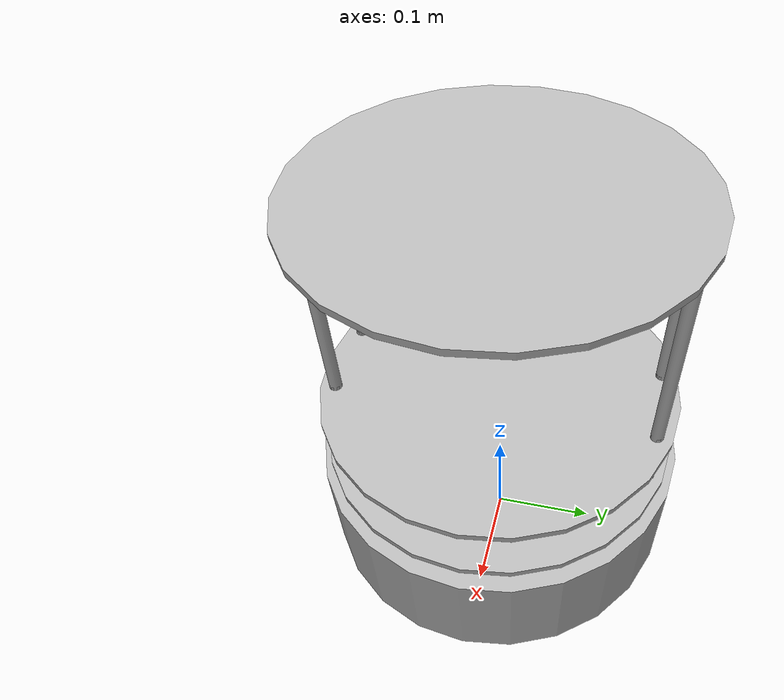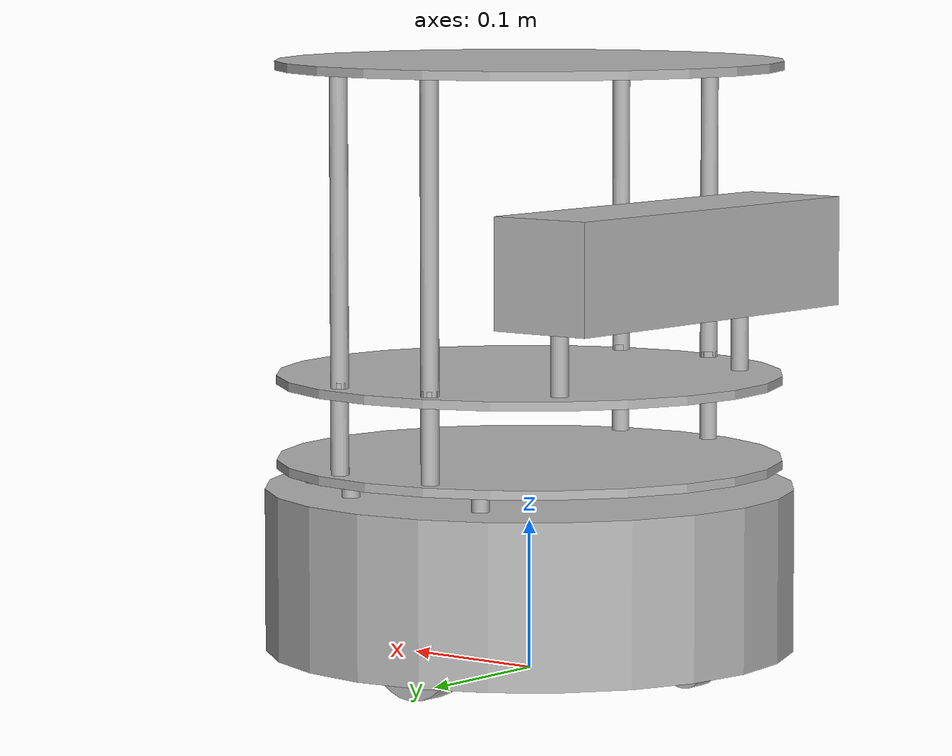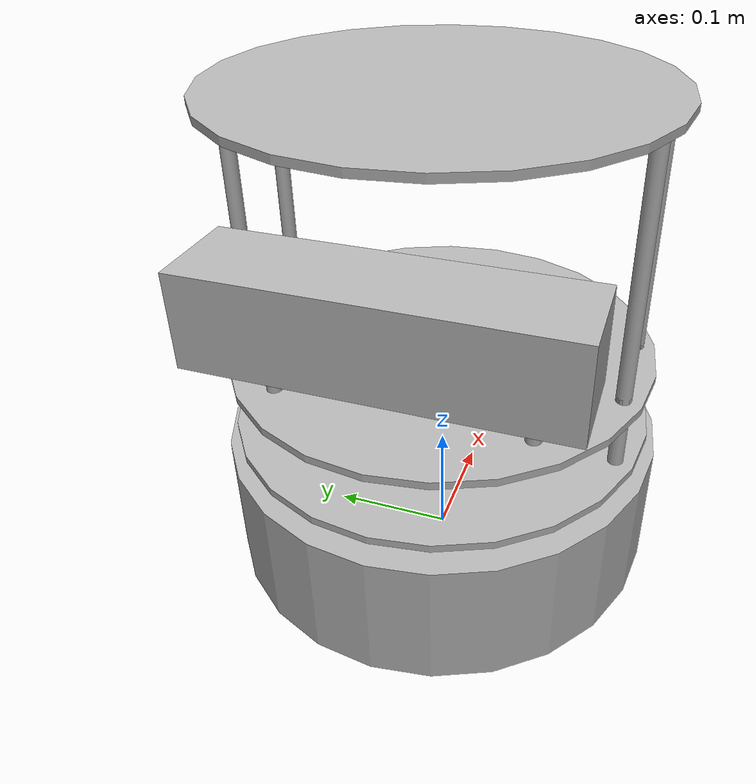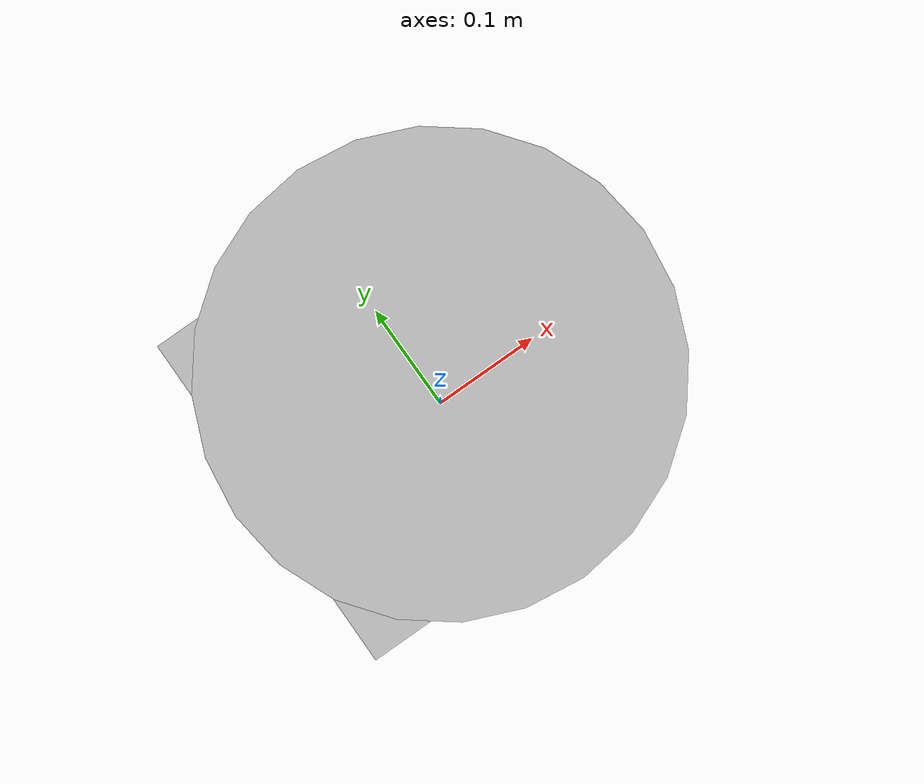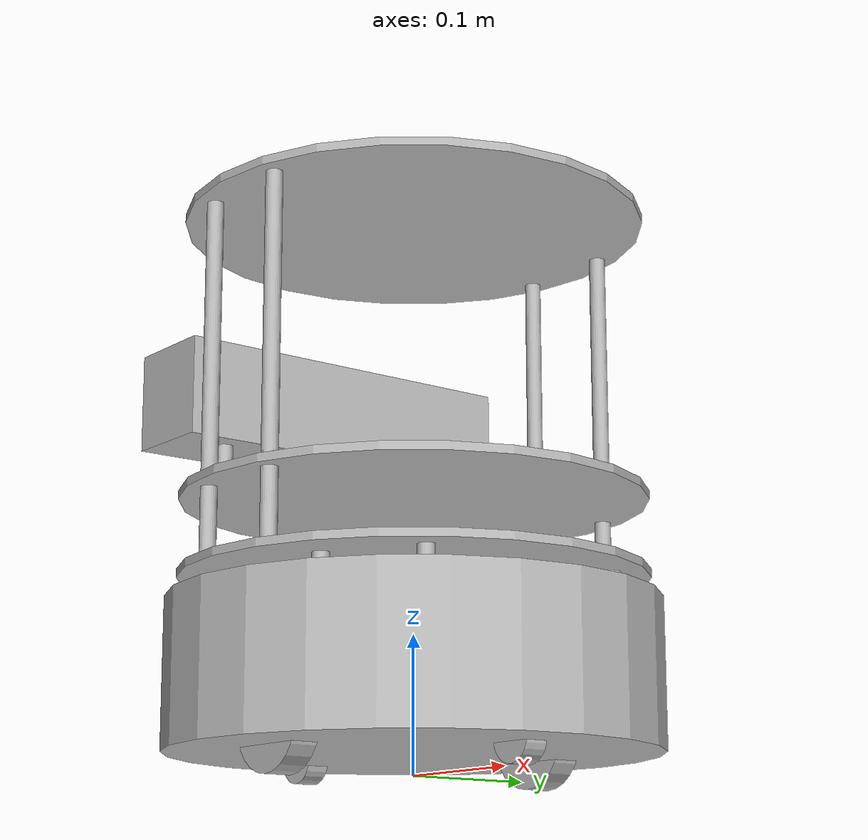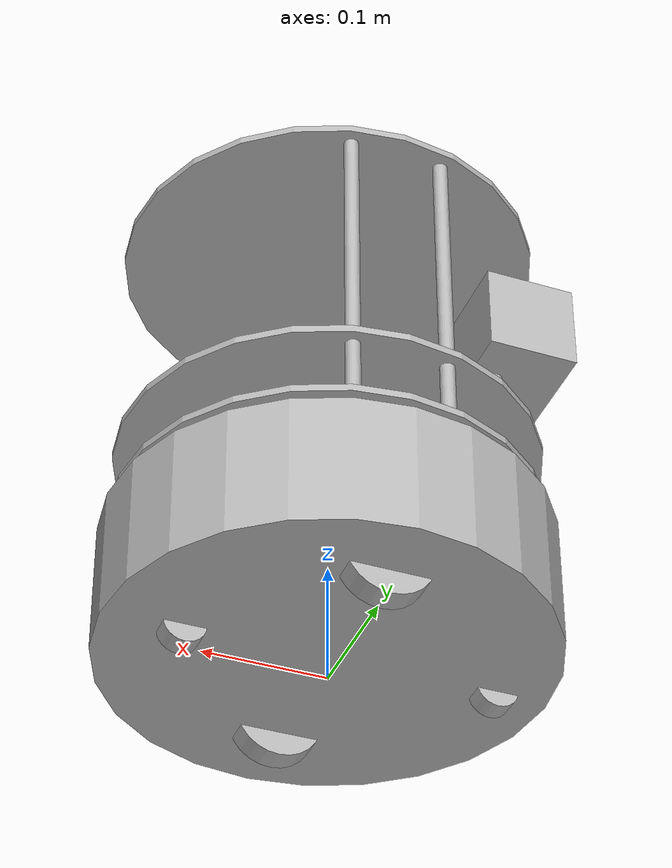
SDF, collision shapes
<sdf version='1.6'>
  <model name='turtlebot'>
    <link name='base_footprint'>
      <pose frame=''>0 0 0 0 -0 0</pose>
      <inertial>
        <pose frame=''>-0.009496 1.3e-05 0.135573 0 -0 0</pose>
        <mass>4.9213</mass>
        <inertia>
          <ixx>0.142129</ixx>
          <ixy>-4.09257e-06</ixy>
          <ixz>0.0154899</ixz>
          <iyy>0.140784</iyy>
          <iyz>6.52071e-06</iyz>
          <izz>0.0801071</izz>
        </inertia>
      </inertial>
      <collision name='base_footprint_fixed_joint_lump__base_collision'>
        <pose frame=''>0 0 0.06969 0 -0 0</pose>
        <geometry>
          <cylinder>
            <length>0.10938</length>
            <radius>0.178</radius>
          </cylinder>
        </geometry>
      </collision>
      <collision name='base_footprint_fixed_joint_lump__camera_link_collision_1'>
        <pose frame=''>-0.118 0 0.2812 0 -0 0</pose>
        <geometry>
          <box>
            <size>0.07271 0.27794 0.073</size>
          </box>
        </geometry>
        <surface>
          <contact>
            <ode/>
          </contact>
          <friction>
            <ode/>
          </friction>
        </surface>
      </collision>
      <collision name='base_footprint_fixed_joint_lump__caster_back_link_collision_2'>
        <pose frame=''>-0.135 0 0.0192 -1.5708 0 0</pose>
        <geometry>
          <cylinder>
            <length>0.0176</length>
            <radius>0.017</radius>
          </cylinder>
        </geometry>
        <surface>
          <contact>
            <ode>
              <kp>1e+06</kp>
              <kd>100</kd>
              <max_vel>1</max_vel>
              <min_depth>0.001</min_depth>
            </ode>
          </contact>
          <friction>
            <ode>
              <mu>0</mu>
              <mu2>0</mu2>
            </ode>
          </friction>
        </surface>
      </collision>
      <collision name='base_footprint_fixed_joint_lump__caster_front_link_collision_3'>
        <pose frame=''>0.115 0 0.0172 -1.5708 0 0</pose>
        <geometry>
          <cylinder>
            <length>0.0176</length>
            <radius>0.017</radius>
          </cylinder>
        </geometry>
        <surface>
          <contact>
            <ode>
              <kp>1e+06</kp>
              <kd>100</kd>
              <max_vel>1</max_vel>
              <min_depth>0.001</min_depth>
            </ode>
          </contact>
          <friction>
            <ode>
              <mu>0</mu>
              <mu2>0</mu2>
            </ode>
          </friction>
        </surface>
      </collision>
      <collision name='base_footprint_fixed_joint_lump__plate_bottom_link_collision_4'>
        <pose frame=''>0 0 0.1408 0 -0 0</pose>
        <geometry>
          <cylinder>
            <length>0.006</length>
            <radius>0.17</radius>
          </cylinder>
        </geometry>
      </collision>
      <collision name='base_footprint_fixed_joint_lump__plate_middle_link_collision_5'>
        <pose frame=''>0 0 0.1976 0 -0 0</pose>
        <geometry>
          <cylinder>
            <length>0.006</length>
            <radius>0.17</radius>
          </cylinder>
        </geometry>
      </collision>
      <collision name='base_footprint_fixed_joint_lump__plate_top_link_collision_6'>
        <pose frame=''>0 0 0.4068 0 -0 0</pose>
        <geometry>
          <cylinder>
            <length>0.006</length>
            <radius>0.17</radius>
          </cylinder>
        </geometry>
      </collision>
      <collision name='base_footprint_fixed_joint_lump__pole_bottom_0_link_collision_7'>
        <pose frame=''>0.12 0.082 0.113 0 -0 0</pose>
        <geometry>
          <cylinder>
            <length>0.0492</length>
            <radius>0.006</radius>
          </cylinder>
        </geometry>
      </collision>
      <collision name='base_footprint_fixed_joint_lump__pole_bottom_1_link_collision_8'>
        <pose frame=''>0.055 0.12 0.113 0 -0 0</pose>
        <geometry>
          <cylinder>
            <length>0.0492</length>
            <radius>0.006</radius>
          </cylinder>
        </geometry>
      </collision>
      <collision name='base_footprint_fixed_joint_lump__pole_bottom_2_link_collision_9'>
        <pose frame=''>-0.055 0.12 0.113 0 -0 0</pose>
        <geometry>
          <cylinder>
            <length>0.0492</length>
            <radius>0.006</radius>
          </cylinder>
        </geometry>
      </collision>
      <collision name='base_footprint_fixed_joint_lump__pole_bottom_3_link_collision_10'>
        <pose frame=''>0.12 -0.082 0.113 0 -0 0</pose>
        <geometry>
          <cylinder>
            <length>0.0492</length>
            <radius>0.006</radius>
          </cylinder>
        </geometry>
      </collision>
      <collision name='base_footprint_fixed_joint_lump__pole_bottom_4_link_collision_11'>
        <pose frame=''>0.055 -0.12 0.113 0 -0 0</pose>
        <geometry>
          <cylinder>
            <length>0.0492</length>
            <radius>0.006</radius>
          </cylinder>
        </geometry>
      </collision>
      <collision name='base_footprint_fixed_joint_lump__pole_bottom_5_link_collision_12'>
        <pose frame=''>-0.055 -0.12 0.113 0 -0 0</pose>
        <geometry>
          <cylinder>
            <length>0.0492</length>
            <radius>0.006</radius>
          </cylinder>
        </geometry>
      </collision>
      <collision name='base_footprint_fixed_joint_lump__pole_kinect_0_link_collision_13'>
        <pose frame=''>-0.1024 0.098 0.2474 0 -0 0</pose>
        <geometry>
          <cylinder>
            <length>0.0936</length>
            <radius>0.006</radius>
          </cylinder>
        </geometry>
      </collision>
      <collision name='base_footprint_fixed_joint_lump__pole_kinect_1_link_collision_14'>
        <pose frame=''>-0.1024 -0.098 0.2474 0 -0 0</pose>
        <geometry>
          <cylinder>
            <length>0.0936</length>
            <radius>0.006</radius>
          </cylinder>
        </geometry>
      </collision>
      <collision name='base_footprint_fixed_joint_lump__pole_middle_0_link_collision_15'>
        <pose frame=''>0.0381 0.1505 0.1742 0 -0 0</pose>
        <geometry>
          <cylinder>
            <length>0.0608</length>
            <radius>0.006</radius>
          </cylinder>
        </geometry>
      </collision>
      <collision name='base_footprint_fixed_joint_lump__pole_middle_1_link_collision_16'>
        <pose frame=''>0.0381 -0.1505 0.1742 0 -0 0</pose>
        <geometry>
          <cylinder>
            <length>0.0608</length>
            <radius>0.006</radius>
          </cylinder>
        </geometry>
      </collision>
      <collision name='base_footprint_fixed_joint_lump__pole_middle_2_link_collision_17'>
        <pose frame=''>-0.0381 0.1505 0.1742 0 -0 0</pose>
        <geometry>
          <cylinder>
            <length>0.0608</length>
            <radius>0.006</radius>
          </cylinder>
        </geometry>
      </collision>
      <collision name='base_footprint_fixed_joint_lump__pole_middle_3_link_collision_18'>
        <pose frame=''>-0.0381 -0.1505 0.1742 0 -0 0</pose>
        <geometry>
          <cylinder>
            <length>0.0608</length>
            <radius>0.006</radius>
          </cylinder>
        </geometry>
      </collision>
      <collision name='base_footprint_fixed_joint_lump__pole_top_0_link_collision_19'>
        <pose frame=''>0.0381 0.1505 0.3022 0 -0 0</pose>
        <geometry>
          <cylinder>
            <length>0.2032</length>
            <radius>0.006</radius>
          </cylinder>
        </geometry>
      </collision>
      <collision name='base_footprint_fixed_joint_lump__pole_top_1_link_collision_20'>
        <pose frame=''>0.0381 -0.1505 0.3022 0 -0 0</pose>
        <geometry>
          <cylinder>
            <length>0.2032</length>
            <radius>0.006</radius>
          </cylinder>
        </geometry>
      </collision>
      <collision name='base_footprint_fixed_joint_lump__pole_top_2_link_collision_21'>
        <pose frame=''>-0.0381 0.1505 0.3022 0 -0 0</pose>
        <geometry>
          <cylinder>
            <length>0.2032</length>
            <radius>0.006</radius>
          </cylinder>
        </geometry>
      </collision>
      <collision name='base_footprint_fixed_joint_lump__pole_top_3_link_collision_22'>
        <pose frame=''>-0.0381 -0.1505 0.3022 0 -0 0</pose>
        <geometry>
          <cylinder>
            <length>0.2032</length>
            <radius>0.006</radius>
          </cylinder>
        </geometry>
      </collision>
      <visual name='base_footprint_fixed_joint_lump__base_link_visual'>
        <pose frame=''>0.001 0 0.06219 0 -0 0</pose>
        <geometry>
          <mesh>
            <scale>1 1 1</scale>
            <uri>model://kobuki_description/meshes/main_body.dae</uri>
          </mesh>
        </geometry>
        <material>
          <script>
            <uri>__default__</uri>
            <name>__default__</name>
          </script>
        </material>
      </visual>
      <visual name='base_footprint_fixed_joint_lump__camera_link_visual_1'>
        <pose frame=''>-0.118 0 0.2812 0 -0 1.5708</pose>
        <geometry>
          <mesh>
            <scale>1 1 1</scale>
            <uri>model://turtlebot_description/meshes/sensors/kinect.dae</uri>
          </mesh>
        </geometry>
        <material>
          <script>
            <uri>__default__</uri>
            <name>__default__</name>
          </script>
        </material>
      </visual>
      <visual name='base_footprint_fixed_joint_lump__plate_bottom_link_visual_2'>
        <pose frame=''>0.02364 0 0.1408 0 -0 0</pose>
        <geometry>
          <mesh>
            <scale>1 1 1</scale>
            <uri>model://turtlebot_description/meshes/stacks/hexagons/plate_bottom.dae</uri>
          </mesh>
        </geometry>
      </visual>
      <visual name='base_footprint_fixed_joint_lump__plate_middle_link_visual_3'>
        <pose frame=''>-0.01364 0 0.1976 0 -0 0</pose>
        <geometry>
          <mesh>
            <scale>1 1 1</scale>
            <uri>model://turtlebot_description/meshes/stacks/hexagons/plate_middle.dae</uri>
          </mesh>
        </geometry>
      </visual>
      <visual name='base_footprint_fixed_joint_lump__plate_top_link_visual_4'>
        <pose frame=''>-0.01364 0 0.4068 0 -0 0</pose>
        <geometry>
          <mesh>
            <scale>1 1 1</scale>
            <uri>model://turtlebot_description/meshes/stacks/hexagons/plate_top.dae</uri>
          </mesh>
        </geometry>
      </visual>
      <visual name='base_footprint_fixed_joint_lump__pole_bottom_0_link_visual_5'>
        <pose frame=''>0.12 0.082 0.113 0 -0 0</pose>
        <geometry>
          <mesh>
            <scale>1 1 1</scale>
            <uri>model://turtlebot_description/meshes/stacks/hexagons/pole_bottom.dae</uri>
          </mesh>
        </geometry>
      </visual>
      <visual name='base_footprint_fixed_joint_lump__pole_bottom_1_link_visual_6'>
        <pose frame=''>0.055 0.12 0.113 0 -0 0</pose>
        <geometry>
          <mesh>
            <scale>1 1 1</scale>
            <uri>model://turtlebot_description/meshes/stacks/hexagons/pole_bottom.dae</uri>
          </mesh>
        </geometry>
      </visual>
      <visual name='base_footprint_fixed_joint_lump__pole_bottom_2_link_visual_7'>
        <pose frame=''>-0.055 0.12 0.113 0 -0 0</pose>
        <geometry>
          <mesh>
            <scale>1 1 1</scale>
            <uri>model://turtlebot_description/meshes/stacks/hexagons/pole_bottom.dae</uri>
          </mesh>
        </geometry>
      </visual>
      <visual name='base_footprint_fixed_joint_lump__pole_bottom_3_link_visual_8'>
        <pose frame=''>0.12 -0.082 0.113 0 -0 0</pose>
        <geometry>
          <mesh>
            <scale>1 1 1</scale>
            <uri>model://turtlebot_description/meshes/stacks/hexagons/pole_bottom.dae</uri>
          </mesh>
        </geometry>
      </visual>
      <visual name='base_footprint_fixed_joint_lump__pole_bottom_4_link_visual_9'>
        <pose frame=''>0.055 -0.12 0.113 0 -0 0</pose>
        <geometry>
          <mesh>
            <scale>1 1 1</scale>
            <uri>model://turtlebot_description/meshes/stacks/hexagons/pole_bottom.dae</uri>
          </mesh>
        </geometry>
      </visual>
      <visual name='base_footprint_fixed_joint_lump__pole_bottom_5_link_visual_10'>
        <pose frame=''>-0.055 -0.12 0.113 0 -0 0</pose>
        <geometry>
          <mesh>
            <scale>1 1 1</scale>
            <uri>model://turtlebot_description/meshes/stacks/hexagons/pole_bottom.dae</uri>
          </mesh>
        </geometry>
      </visual>
      <visual name='base_footprint_fixed_joint_lump__pole_kinect_0_link_visual_11'>
        <pose frame=''>-0.1024 0.098 0.2374 0 -0 0</pose>
        <geometry>
          <mesh>
            <scale>1 1 1</scale>
            <uri>model://turtlebot_description/meshes/sensors/sensor_pole.dae</uri>
          </mesh>
        </geometry>
      </visual>
      <visual name='base_footprint_fixed_joint_lump__pole_kinect_1_link_visual_12'>
        <pose frame=''>-0.1024 -0.098 0.2374 0 -0 0</pose>
        <geometry>
          <mesh>
            <scale>1 1 1</scale>
            <uri>model://turtlebot_description/meshes/sensors/sensor_pole.dae</uri>
          </mesh>
        </geometry>
      </visual>
      <visual name='base_footprint_fixed_joint_lump__pole_middle_0_link_visual_13'>
        <pose frame=''>0.0381 0.1505 0.1742 3.14159 -0 3.14159</pose>
        <geometry>
          <mesh>
            <scale>1 1 1</scale>
            <uri>model://turtlebot_description/meshes/stacks/hexagons/pole_middle.dae</uri>
          </mesh>
        </geometry>
      </visual>
      <visual name='base_footprint_fixed_joint_lump__pole_middle_1_link_visual_14'>
        <pose frame=''>0.0381 -0.1505 0.1742 3.14159 -0 3.14159</pose>
        <geometry>
          <mesh>
            <scale>1 1 1</scale>
            <uri>model://turtlebot_description/meshes/stacks/hexagons/pole_middle.dae</uri>
          </mesh>
        </geometry>
      </visual>
      <visual name='base_footprint_fixed_joint_lump__pole_middle_2_link_visual_15'>
        <pose frame=''>-0.0381 0.1505 0.1742 3.14159 -0 3.14159</pose>
        <geometry>
          <mesh>
            <scale>1 1 1</scale>
            <uri>model://turtlebot_description/meshes/stacks/hexagons/pole_middle.dae</uri>
          </mesh>
        </geometry>
      </visual>
      <visual name='base_footprint_fixed_joint_lump__pole_middle_3_link_visual_16'>
        <pose frame=''>-0.0381 -0.1505 0.1742 3.14159 -0 3.14159</pose>
        <geometry>
          <mesh>
            <scale>1 1 1</scale>
            <uri>model://turtlebot_description/meshes/stacks/hexagons/pole_middle.dae</uri>
          </mesh>
        </geometry>
      </visual>
      <visual name='base_footprint_fixed_joint_lump__pole_top_0_link_visual_17'>
        <pose frame=''>0.0381 0.1505 0.3022 0 -0 0</pose>
        <geometry>
          <mesh>
            <scale>1 1 1</scale>
            <uri>model://turtlebot_description/meshes/stacks/hexagons/pole_top.dae</uri>
          </mesh>
        </geometry>
      </visual>
      <visual name='base_footprint_fixed_joint_lump__pole_top_1_link_visual_18'>
        <pose frame=''>0.0381 -0.1505 0.3022 0 -0 0</pose>
        <geometry>
          <mesh>
            <scale>1 1 1</scale>
            <uri>model://turtlebot_description/meshes/stacks/hexagons/pole_top.dae</uri>
          </mesh>
        </geometry>
      </visual>
      <visual name='base_footprint_fixed_joint_lump__pole_top_2_link_visual_19'>
        <pose frame=''>-0.0381 0.1505 0.3022 0 -0 0</pose>
        <geometry>
          <mesh>
            <scale>1 1 1</scale>
            <uri>model://turtlebot_description/meshes/stacks/hexagons/pole_top.dae</uri>
          </mesh>
        </geometry>
      </visual>
      <visual name='base_footprint_fixed_joint_lump__pole_top_3_link_visual_20'>
        <pose frame=''>-0.0381 -0.1505 0.3022 0 -0 0</pose>
        <geometry>
          <mesh>
            <scale>1 1 1</scale>
            <uri>model://turtlebot_description/meshes/stacks/hexagons/pole_top.dae</uri>
          </mesh>
        </geometry>
      </visual>
      <velocity_decay/>
      <sensor name='bumpers' type='contact'>
        <always_on>1</always_on>
        <update_rate>50</update_rate>
        <visualize>1</visualize>
        <contact>
          <collision>base_footprint_fixed_joint_lump__base_collision</collision>
          <topic>__default_topic__</topic>
        </contact>
        <pose frame=''>0 0 0.0102 0 -0 0</pose>
      </sensor>
      <velocity_decay/>
      <sensor name='camera' type='depth'>
        <always_on>1</always_on>
        <update_rate>20</update_rate>
        <camera name='__default__'>
          <horizontal_fov>1.0472</horizontal_fov>
          <image>
            <format>B8G8R8</format>
            <width>640</width>
            <height>480</height>
          </image>
          <clip>
            <near>0.05</near>
            <far>8</far>
          </clip>
        </camera>
        <plugin name='kinect_camera_controller' filename='libgazebo_ros_openni_kinect.so'>
          <cameraName>camera</cameraName>
          <alwaysOn>true</alwaysOn>
          <updateRate>10</updateRate>
          <imageTopicName>rgb/image_raw</imageTopicName>
          <depthImageTopicName>depth/image_raw</depthImageTopicName>
          <pointCloudTopicName>depth/points</pointCloudTopicName>
          <cameraInfoTopicName>rgb/camera_info</cameraInfoTopicName>
          <depthImageCameraInfoTopicName>depth/camera_info</depthImageCameraInfoTopicName>
          <frameName>camera_depth_optical_frame</frameName>
          <baseline>0.1</baseline>
          <distortion_k1>0.0</distortion_k1>
          <distortion_k2>0.0</distortion_k2>
          <distortion_k3>0.0</distortion_k3>
          <distortion_t1>0.0</distortion_t1>
          <distortion_t2>0.0</distortion_t2>
          <pointCloudCutoff>0.4</pointCloudCutoff>
        </plugin>
        <pose frame=''>-0.118 0 0.2812 0 -0 0</pose>
      </sensor>
      <velocity_decay/>
      <velocity_decay/>
      <velocity_decay/>
      <sensor name='cliff_sensor_front' type='ray'>
        <always_on>1</always_on>
        <update_rate>50</update_rate>
        <visualize>1</visualize>
        <ray>
          <scan>
            <horizontal>
              <samples>50</samples>
              <resolution>1</resolution>
              <min_angle>-0.0436</min_angle>
              <max_angle>0.0436</max_angle>
            </horizontal>
          </scan>
          <range>
            <min>0.01</min>
            <max>0.15</max>
            <resolution>1</resolution>
          </range>
        </ray>
        <pose frame=''>0.156 0 0.0316 3.14159 1.57079 3.14159</pose>
      </sensor>
      <velocity_decay/>
      <sensor name='cliff_sensor_left' type='ray'>
        <always_on>1</always_on>
        <update_rate>50</update_rate>
        <visualize>1</visualize>
        <ray>
          <scan>
            <horizontal>
              <samples>50</samples>
              <resolution>1</resolution>
              <min_angle>-0.0436</min_angle>
              <max_angle>0.0436</max_angle>
            </horizontal>
          </scan>
          <range>
            <min>0.01</min>
            <max>0.15</max>
            <resolution>1</resolution>
          </range>
        </ray>
        <pose frame=''>0.08734 0.13601 0.0316 3.14159 1.57079 3.14159</pose>
      </sensor>
      <velocity_decay/>
      <sensor name='cliff_sensor_right' type='ray'>
        <always_on>1</always_on>
        <update_rate>50</update_rate>
        <visualize>1</visualize>
        <ray>
          <scan>
            <horizontal>
              <samples>50</samples>
              <resolution>1</resolution>
              <min_angle>-0.0436</min_angle>
              <max_angle>0.0436</max_angle>
            </horizontal>
          </scan>
          <range>
            <min>0.01</min>
            <max>0.15</max>
            <resolution>1</resolution>
          </range>
        </ray>
        <pose frame=''>0.085 -0.13601 0.0316 3.14159 1.57079 3.14159</pose>
      </sensor>
      <gravity>1</gravity>
      <velocity_decay/>
      <self_collide>0</self_collide>
      <sensor name='imu' type='imu'>
        <always_on>1</always_on>
        <update_rate>50</update_rate>
        <visualize>0</visualize>
        <imu>
          <angular_velocity>
            <x>
              <noise type='gaussian'>
                <mean>0</mean>
                <stddev>1.96e-06</stddev>
                <bias_mean>0</bias_mean>
                <bias_stddev>0</bias_stddev>
              </noise>
            </x>
            <y>
              <noise type='gaussian'>
                <mean>0</mean>
                <stddev>1.96e-06</stddev>
                <bias_mean>0</bias_mean>
                <bias_stddev>0</bias_stddev>
              </noise>
            </y>
            <z>
              <noise type='gaussian'>
                <mean>0</mean>
                <stddev>1.96e-06</stddev>
                <bias_mean>0</bias_mean>
                <bias_stddev>0</bias_stddev>
              </noise>
            </z>
          </angular_velocity>
          <linear_acceleration>
            <x>
              <noise type='gaussian'>
                <mean>0</mean>
                <stddev>0.017</stddev>
                <bias_mean>0.1</bias_mean>
                <bias_stddev>0.001</bias_stddev>
              </noise>
            </x>
            <y>
              <noise type='gaussian'>
                <mean>0</mean>
                <stddev>0.017</stddev>
                <bias_mean>0.1</bias_mean>
                <bias_stddev>0.001</bias_stddev>
              </noise>
            </y>
            <z>
              <noise type='gaussian'>
                <mean>0</mean>
                <stddev>0.017</stddev>
                <bias_mean>0.1</bias_mean>
                <bias_stddev>0.001</bias_stddev>
              </noise>
            </z>
          </linear_acceleration>
        </imu>
        <pose frame=''>0.056 0.062 0.0304 0 -0 0</pose>
      </sensor>
    </link>
    <link name='spring_wheel_left_link'>
      <pose frame=''>0 0.135 0.0302 3.14159 1.57079 3.14159</pose>
      <inertial>
        <pose frame=''>0 0 0 0 -0 0</pose>
        <mass>0.01</mass>
        <inertia>
          <ixx>0.001</ixx>
          <ixy>0</ixy>
          <ixz>0</ixz>
          <iyy>0.001</iyy>
          <iyz>0</iyz>
          <izz>0.001</izz>
        </inertia>
      </inertial>
      <collision name='spring_wheel_left_link_collision'>
        <pose frame=''>0 0 0 0 -0 0</pose>
        <geometry>
          <box>
            <size>0.01 0.01 0.01</size>
          </box>
        </geometry>
      </collision>
      <visual name='spring_wheel_left_link_visual'>
        <pose frame=''>0 0 0 0 -0 0</pose>
        <geometry>
          <box>
            <size>0.01 0.01 0.01</size>
          </box>
        </geometry>
      </visual>
    </link>
    <joint name='spring_wheel_left_joint' type='prismatic'>
      <child>spring_wheel_left_link</child>
      <parent>base_footprint</parent>
      <axis>
        <xyz>0 0 -1</xyz>
        <limit>
          <lower>0</lower>
          <upper>0.025</upper>
          <effort>0</effort>
          <velocity>0</velocity>
        </limit>
        <dynamics>
          <damping>0.1</damping>
          <friction>0</friction>
          <spring_reference>0</spring_reference>
          <spring_stiffness>0</spring_stiffness>
        </dynamics>
        <use_parent_model_frame>1</use_parent_model_frame>
      </axis>
    </joint>
    <link name='wheel_left_link'>
      <pose frame=''>0 0.115 0.0302 1.57078 1.57079 3.14158</pose>
      <inertial>
        <pose frame=''>0 0 0 0 -0 0</pose>
        <mass>0.01</mass>
        <inertia>
          <ixx>0.001</ixx>
          <ixy>0</ixy>
          <ixz>0</ixz>
          <iyy>0.001</iyy>
          <iyz>0</iyz>
          <izz>0.001</izz>
        </inertia>
      </inertial>
      <collision name='wheel_left_link_collision'>
        <pose frame=''>0 0 0 0 -0 0</pose>
        <geometry>
          <cylinder>
            <length>0.0206</length>
            <radius>0.0352</radius>
          </cylinder>
        </geometry>
        <surface>
          <contact>
            <ode>
              <kp>1e+06</kp>
              <kd>100</kd>
              <max_vel>0</max_vel>
              <min_depth>0.001</min_depth>
            </ode>
          </contact>
          <friction>
            <ode>
              <mu>4</mu>
              <mu2>4</mu2>
            </ode>
          </friction>
        </surface>
      </collision>
      <visual name='wheel_left_link_visual'>
        <pose frame=''>0 0 0 0 -0 0</pose>
        <geometry>
          <mesh>
            <scale>1 1 1</scale>
            <uri>model://kobuki_description/meshes/wheel.dae</uri>
          </mesh>
        </geometry>
        <material>
          <script>
            <uri>__default__</uri>
            <name>__default__</name>
          </script>
        </material>
      </visual>
      <gravity>1</gravity>
      <velocity_decay/>
      <self_collide>0</self_collide>
    </link>
    <joint name='wheel_left_joint' type='revolute'>
      <child>wheel_left_link</child>
      <parent>spring_wheel_left_link</parent>
      <axis>
        <xyz>0 1 -0</xyz>
        <limit>
          <lower>-1e+16</lower>
          <upper>1e+16</upper>
        </limit>
        <dynamics>
          <spring_reference>0</spring_reference>
          <spring_stiffness>0</spring_stiffness>
        </dynamics>
        <use_parent_model_frame>1</use_parent_model_frame>
      </axis>
    </joint>
    <link name='spring_wheel_right_link'>
      <pose frame=''>0 -0.135 0.0302 3.14159 1.57079 3.14159</pose>
      <inertial>
        <pose frame=''>0 0 0 0 -0 0</pose>
        <mass>0.01</mass>
        <inertia>
          <ixx>0.001</ixx>
          <ixy>0</ixy>
          <ixz>0</ixz>
          <iyy>0.001</iyy>
          <iyz>0</iyz>
          <izz>0.001</izz>
        </inertia>
      </inertial>
      <collision name='spring_wheel_right_link_collision'>
        <pose frame=''>0 0 0 0 -0 0</pose>
        <geometry>
          <box>
            <size>0.01 0.01 0.01</size>
          </box>
        </geometry>
      </collision>
      <visual name='spring_wheel_right_link_visual'>
        <pose frame=''>0 0 0 0 -0 0</pose>
        <geometry>
          <box>
            <size>0.01 0.01 0.01</size>
          </box>
        </geometry>
      </visual>
    </link>
    <joint name='spring_wheel_right_joint' type='prismatic'>
      <child>spring_wheel_right_link</child>
      <parent>base_footprint</parent>
      <axis>
        <xyz>0 0 -1</xyz>
        <limit>
          <lower>0</lower>
          <upper>0.025</upper>
          <effort>0</effort>
          <velocity>0</velocity>
        </limit>
        <dynamics>
          <damping>0.1</damping>
          <friction>0</friction>
          <spring_reference>0</spring_reference>
          <spring_stiffness>0</spring_stiffness>
        </dynamics>
        <use_parent_model_frame>1</use_parent_model_frame>
      </axis>
    </joint>
    <link name='wheel_right_link'>
      <pose frame=''>0 -0.115 0.0302 1.57078 1.57079 3.14158</pose>
      <inertial>
        <pose frame=''>0 0 0 0 -0 0</pose>
        <mass>0.01</mass>
        <inertia>
          <ixx>0.001</ixx>
          <ixy>0</ixy>
          <ixz>0</ixz>
          <iyy>0.001</iyy>
          <iyz>0</iyz>
          <izz>0.001</izz>
        </inertia>
      </inertial>
      <collision name='wheel_right_link_collision'>
        <pose frame=''>0 0 0 0 -0 0</pose>
        <geometry>
          <cylinder>
            <length>0.0206</length>
            <radius>0.035</radius>
          </cylinder>
        </geometry>
        <surface>
          <contact>
            <ode>
              <kp>1e+06</kp>
              <kd>100</kd>
              <max_vel>0</max_vel>
              <min_depth>0.001</min_depth>
            </ode>
          </contact>
          <friction>
            <ode>
              <mu>4</mu>
              <mu2>4</mu2>
            </ode>
          </friction>
        </surface>
      </collision>
      <visual name='wheel_right_link_visual'>
        <pose frame=''>0 0 0 0 -0 0</pose>
        <geometry>
          <mesh>
            <scale>1 1 1</scale>
            <uri>model://kobuki_description/meshes/wheel.dae</uri>
          </mesh>
        </geometry>
        <material>
          <script>
            <uri>__default__</uri>
            <name>__default__</name>
          </script>
        </material>
      </visual>
      <gravity>1</gravity>
      <velocity_decay/>
      <self_collide>0</self_collide>
    </link>
    <joint name='wheel_right_joint' type='revolute'>
      <child>wheel_right_link</child>
      <parent>spring_wheel_right_link</parent>
      <axis>
        <xyz>0 1 -0</xyz>
        <limit>
          <lower>-1e+16</lower>
          <upper>1e+16</upper>
        </limit>
        <dynamics>
          <spring_reference>0</spring_reference>
          <spring_stiffness>0</spring_stiffness>
        </dynamics>
        <use_parent_model_frame>1</use_parent_model_frame>
      </axis>
    </joint>
    <static>0</static>
    <plugin name='kobuki_controller' filename='libgazebo_ros_kobuki.so'>
      <publish_tf>1</publish_tf>
      <left_wheel_joint_name>wheel_left_joint</left_wheel_joint_name>
      <right_wheel_joint_name>wheel_right_joint</right_wheel_joint_name>
      <wheel_separation>.230</wheel_separation>
      <wheel_diameter>0.070</wheel_diameter>
      <torque>1.0</torque>
      <velocity_command_timeout>0.6</velocity_command_timeout>
      <cliff_sensor_left_name>cliff_sensor_left</cliff_sensor_left_name>
      <cliff_sensor_center_name>cliff_sensor_front</cliff_sensor_center_name>
      <cliff_sensor_right_name>cliff_sensor_right</cliff_sensor_right_name>
      <cliff_detection_threshold>0.05</cliff_detection_threshold>
      <bumper_name>bumpers</bumper_name>
      <imu_name>imu</imu_name>
    </plugin>
  </model>
</sdf>
